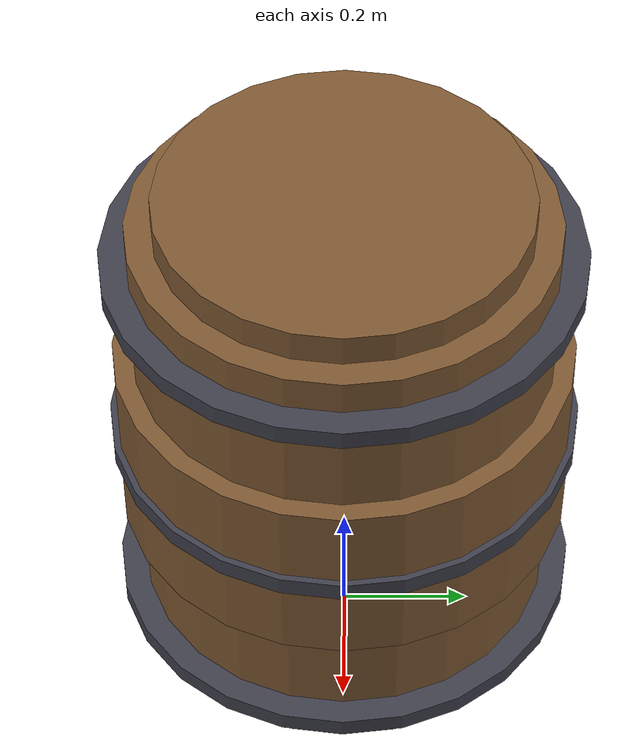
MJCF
<mujoco>
  <!-- Wooden barrel (primitive approximation - mesh available in 3DS) -->
  <asset>
    <material name="barrel_wood" rgba="0.5 0.35 0.2 1"/>
    <material name="barrel_metal" rgba="0.25 0.25 0.3 1"/>
  </asset>

  <worldbody>
    <body name="barrel_root">
      <!-- Main barrel body (cylinder with slight bulge effect via multiple cylinders) -->
      <geom name="barrel_bottom" type="cylinder" size="0.28 0.05" pos="0 0 0.05" material="barrel_wood"/>
      <geom name="barrel_lower" type="cylinder" size="0.32 0.15" pos="0 0 0.2" material="barrel_wood"/>
      <geom name="barrel_middle" type="cylinder" size="0.35 0.15" pos="0 0 0.45" material="barrel_wood"/>
      <geom name="barrel_upper" type="cylinder" size="0.32 0.15" pos="0 0 0.7" material="barrel_wood"/>
      <geom name="barrel_top" type="cylinder" size="0.28 0.05" pos="0 0 0.85" material="barrel_wood"/>

      <!-- Metal bands -->
      <geom name="band_1" type="cylinder" size="0.36 0.015" pos="0 0 0.12" material="barrel_metal"/>
      <geom name="band_2" type="cylinder" size="0.36 0.015" pos="0 0 0.45" material="barrel_metal"/>
      <geom name="band_3" type="cylinder" size="0.36 0.015" pos="0 0 0.78" material="barrel_metal"/>
    </body>
  </worldbody>
</mujoco>
